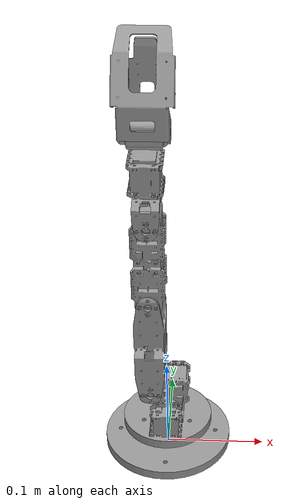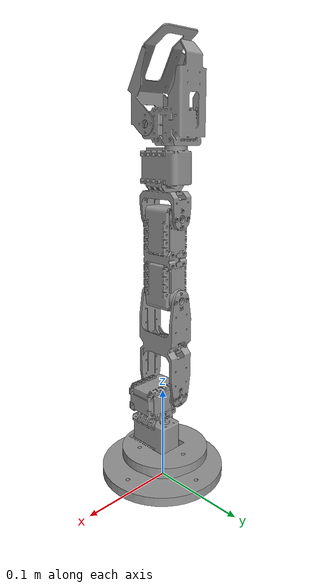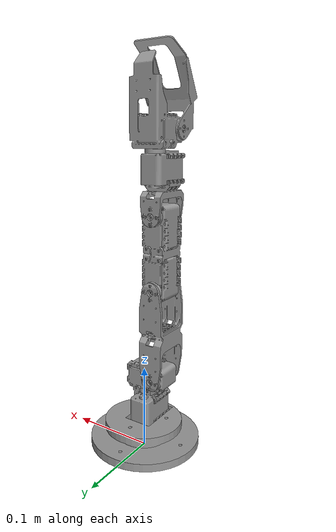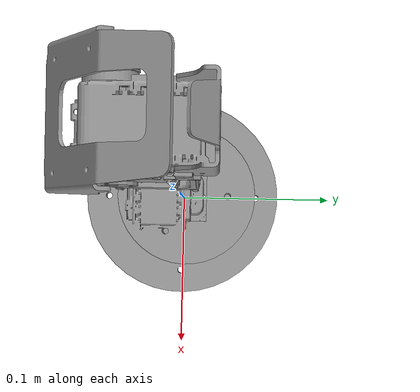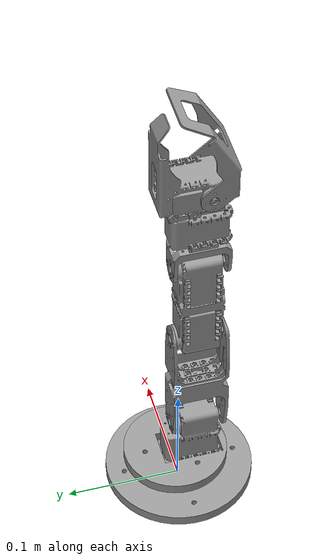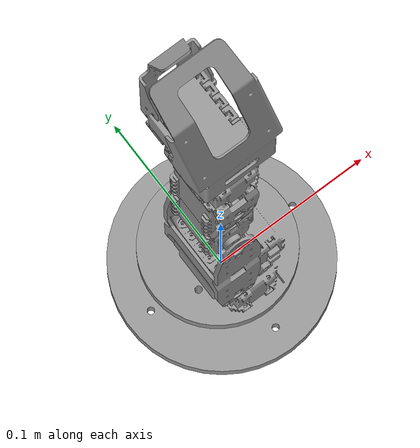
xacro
<?xml version="1.0"?>
<!-- Revolute-Revolute Manipulator -->
<robot name="robotis_manipulator" xmlns:xacro="http://www.ros.org/wiki/xacro">

  <!-- some parameters -->
  <xacro:property name="pi" value="3.141592654" />

  <!-- Import all Gazebo-customization elements, including Gazebo colors -->
  <xacro:include filename="$(find hcr_description)/urdf/yacra.gazebo" />
  <!-- Import Rviz colors -->
  <xacro:include filename="$(find hcr_description)/urdf/materials.xacro" />

  <link name="link_armBase"/>
  <joint name="joint_armBase" type="fixed">
    <parent link="link_armBase"/>
    <child link="link_arm1"/>
    <origin xyz="0 0 0" rpy="0 0 0"/>
  </joint>

  <!-- link 1 -->
  <link name="link_arm1">
    <collision>
      <origin xyz="-0.0 -0.0666 0" rpy="0 0 0"/>
      <geometry>
        <mesh filename="package://hcr_description/meshes/1.STL" scale="0.001 0.001 0.001"/>
      </geometry>
    </collision>

    <visual>
      <origin xyz="-0.0 -0.0666 0" rpy="0 0 0"/>
      <geometry>
        <mesh filename="package://hcr_description/meshes/1.STL" scale="0.001 0.001 0.001"/>
      </geometry>
      <material name="grey"/>
    </visual>

    <inertial>
      <origin xyz="-0.80 0.00000 -0.8223" rpy="0 0 0"/>
      <mass value="0.001"/>
      <inertia ixx="1.0" ixy="0.0" ixz="0.0" iyy="1.0" iyz="0.0" izz="1.0" />
    </inertial>
  </link>

  <!-- Joint 1 -->
  <joint name="joint_arm1" type="revolute">
    <parent link="link_arm1"/>
    <child link="link_arm2"/>
    <origin xyz="0.0 0.0 0.0" rpy="0 0 0"/>
    <axis xyz="0 0 1"/>
    <limit velocity="6.5" effort="1000" lower="${-pi}" upper="${pi}" />
    <dynamics damping="0.7"/>
  </joint>

  <transmission name="tranmission_arm1">
    <type>transmission_interface/SimpleTransmission</type>
    <joint name="joint_arm1">
      <hardwareInterface>hardware_interface/EffortJointInterface</hardwareInterface>
    </joint>
    <actuator name="actuartor_arm1">
      <hardwareInterface>hardware_interface/EffortJointInterface</hardwareInterface>
      <mechanicalReduction>1</mechanicalReduction>
    </actuator>
  </transmission>

  <!-- link 2 -->
  <link name="link_arm2">
    <collision>
      <origin xyz="-0.015 -0.063 -0.008" rpy="0 0 0"/>
      <geometry>
        <mesh filename="package://hcr_description/meshes/2.STL" scale="0.001 0.001 0.001"/>
      </geometry>
    </collision>

    <visual>
      <origin xyz="-0.015 -0.063 -0.008" rpy="0 0 0"/>
      <geometry>
        <mesh filename="package://hcr_description/meshes/2.STL" scale="0.001 0.001 0.001"/>
      </geometry>
      <material name="grey"/>
    </visual>

    <inertial>
      <origin xyz="0.00000 0.00000 0.00283" rpy="0 0 0"/>
      <mass value="0.94658"/>
      <inertia ixx="1.0" ixy="0.0" ixz="0.0" iyy="1.0" iyz="0.0" izz="1.0" />
    </inertial>
  </link>

  <!-- Joint 2 -->
  <joint name="joint_arm2" type="revolute">
    <parent link="link_arm2"/>
    <child link="link_arm3"/>
    <origin xyz="-0.01475 -0.01475 0.090" rpy="0 0 0"/>
    <axis xyz="0 1 0"/>
    <limit velocity="6.5" effort="1000" lower="-2.74276" upper="1.76715" />
    <dynamics damping="0.7"/>
  </joint>

  <transmission name="transmission_arm2">
    <type>transmission_interface/SimpleTransmission</type>
    <joint name="joint_arm2">
      <hardwareInterface>hardware_interface/EffortJointInterface</hardwareInterface>
    </joint>
    <actuator name="actuartor_arm2">
      <hardwareInterface>hardware_interface/EffortJointInterface</hardwareInterface>
      <mechanicalReduction>1</mechanicalReduction>
    </actuator>
  </transmission>

  <!-- link 3 -->
  <link name="link_arm3">
    <collision>
      <origin xyz="-0.00006 -0.048 -0.0980" rpy="0 0 0"/>
      <geometry>
        <mesh filename="package://hcr_description/meshes/3.STL" scale="0.001 0.001 0.001"/>
      </geometry>
    </collision>

    <visual>
      <origin xyz="-0.00006 -0.048 -0.0980" rpy="0 0 0"/>
      <geometry>
        <mesh filename="package://hcr_description/meshes/3.STL" scale="0.001 0.001 0.001"/>
      </geometry>
      <material name="grey"/>
    </visual>

    <inertial>
      <origin xyz="0.01768 -0.06881 0.00524" rpy="0 0 0"/>
      <mass value="1.30260"/>
      <inertia ixx="1.0" ixy="0.0" ixz="0.0" iyy="1.0" iyz="0.0" izz="1.0" />
    </inertial>
  </link>

  <!-- Joint 3 -->
  <joint name="joint_arm3" type="revolute">
    <parent link="link_arm3"/>
    <child link="link_arm4"/>
    <origin xyz="0.00000 0.00000 0.1074" rpy="0 0 0"/>
    <axis xyz="0 1 0"/>
    <limit velocity="6.5" effort="1000" lower="-2.83480" upper="2.99433" />
    <dynamics damping="0.7"/>
  </joint>

  <transmission name="transmission_arm3">
    <type>transmission_interface/SimpleTransmission</type>
    <joint name="joint_arm3">
      <hardwareInterface>hardware_interface/EffortJointInterface</hardwareInterface>
    </joint>
    <actuator name="actuartor_arm3">
      <hardwareInterface>hardware_interface/EffortJointInterface</hardwareInterface>
      <mechanicalReduction>1</mechanicalReduction>
    </actuator>
  </transmission>

  <!-- link 4 -->
  <link name="link_arm4">
    <collision>
      <origin xyz="0 -0.048 -0.20569" rpy="0 0 0"/>
      <geometry>
        <mesh filename="package://hcr_description/meshes/4-neu.STL" scale="0.001 0.001 0.001"/>
      </geometry>
    </collision>

    <visual>
      <origin xyz="0 -0.048 -0.20569" rpy="0 0 0"/>
      <geometry>
        <mesh filename="package://hcr_description/meshes/4-neu.STL" scale="0.001 0.001 0.001"/>
      </geometry>
      <material name="grey"/>
    </visual>

    <inertial>
      <origin xyz="0.12475 -0.05716 0.02979" rpy="0 0 0"/>
      <mass value="1.15977"/>
      <inertia ixx="1.0" ixy="0.0" ixz="0.0" iyy="1.0" iyz="0.0" izz="1.0" />
    </inertial>
  </link>

  <!-- Joint 4 -->
  <joint name="joint_arm4" type="revolute">
    <parent link="link_arm4"/>
    <child link="link_arm5"/>
   <origin xyz="0.00 0.00 0.08300" rpy="0 0 0"/>
    <axis xyz="0 1 0"/>
    <limit velocity="6.5" effort="1000" lower="-2.03713" upper="2.13530" />
    <dynamics damping="0.7"/>
  </joint>

  <transmission name="transmission_arm4">
    <type>transmission_interface/SimpleTransmission</type>
    <joint name="joint_arm4">
      <hardwareInterface>hardware_interface/EffortJointInterface</hardwareInterface>
    </joint>
    <actuator name="actuartor_arm4">
      <hardwareInterface>hardware_interface/EffortJointInterface</hardwareInterface>
      <mechanicalReduction>1</mechanicalReduction>
    </actuator>
  </transmission>

  <!-- link 5 -->
  <link name="link_arm5">
    <collision>
      <origin xyz="0 -0.048 -0.28890" rpy="0 0 0"/>
      <geometry>
        <mesh filename="package://hcr_description/meshes/5.STL" scale="0.001 0.001 0.001"/>
      </geometry>
    </collision>

    <visual>
      <origin xyz="0 -0.048 -0.28890" rpy="0 0 0"/>
      <geometry>
        <mesh filename="package://hcr_description/meshes/5.STL" scale="0.001 0.001 0.001"/>
      </geometry>
      <material name="grey"/>
    </visual>

    <inertial>
      <origin xyz="0.05642 -0.00217 0.00002" rpy="0 0 0"/>
      <mass value="0.44688"/>
      <inertia ixx="1.0" ixy="0.0" ixz="0.0" iyy="1.0" iyz="0.0" izz="1.0" />
    </inertial>
  </link>

  <!-- Joint 5 -->
  <joint name="joint_arm5" type="revolute">
    <parent link="link_arm5"/>
    <child link="link_arm6"/>
    <origin xyz="0.000 0.01785 0.06775" rpy="0 0 0"/>
    <axis xyz="0 0 1"/>
    <limit velocity="6.5" effort="1000" lower="${-pi}" upper="${pi}" />
    <dynamics damping="0.7"/>
  </joint>

  <transmission name="transmission_arm5">
    <type>transmission_interface/SimpleTransmission</type>
    <joint name="joint_arm5">
      <hardwareInterface>hardware_interface/EffortJointInterface</hardwareInterface>
    </joint>
    <actuator name="actuartor_arm5">
      <hardwareInterface>hardware_interface/EffortJointInterface</hardwareInterface>
      <mechanicalReduction>1</mechanicalReduction>
    </actuator>
  </transmission>

  <!-- link 6 -->
  <link name="link_arm6">
    <collision>
      <origin xyz="0 -0.063006 -0.35695008" rpy="0 0 0"/>
      <geometry>
        <mesh filename="package://hcr_description/meshes/6.STL" scale="0.001 0.001 0.001"/>
      </geometry>
    </collision>

    <visual>
      <origin xyz="0 -0.063006 -0.35695008" rpy="0 0 0"/>
      <geometry>
        <mesh filename="package://hcr_description/meshes/6.STL" scale="0.001 0.001 0.001"/>
      </geometry>
      <material name="grey"/>
    </visual>

    <inertial>
      <origin xyz="0.06831 -0.04457 0.00000" rpy="0 0 0"/>
      <mass value="0.43273"/>
      <inertia ixx="1.0" ixy="0.0" ixz="0.0" iyy="1.0" iyz="0.0" izz="1.0" />
    </inertial>
  </link>

  <!-- Joint 6 -->
  <joint name="joint_arm6" type="revolute">
    <parent link="link_arm6"/>
    <child link="link_armEndEff"/>
    <origin xyz="0.00 -0.0207 0.02400" rpy="0 0 0"/>
    <axis xyz="1 0 0"/>
    <limit velocity="6.5" effort="1000" lower="${-pi*0.15}" upper="${pi*0.4}" />
    <dynamics damping="0.7"/>
  </joint>

  <transmission name="transmission_arm6">
    <type>transmission_interface/SimpleTransmission</type>
    <joint name="joint_arm6">
      <hardwareInterface>hardware_interface/EffortJointInterface</hardwareInterface>
    </joint>
    <actuator name="actuartor_arm6">
      <hardwareInterface>hardware_interface/EffortJointInterface</hardwareInterface>
      <mechanicalReduction>1</mechanicalReduction>
    </actuator>
  </transmission>

  <!-- end link -->
  <link name="link_armEndEff">
    <collision>
      <origin xyz="0 -0.0418 -0.380" rpy="0 0 0"/>
      <geometry>
        <mesh filename="package://hcr_description/meshes/7.STL" scale="0.001 0.001 0.001"/>
      </geometry>
    </collision>

    <visual>
      <origin xyz="0 -0.0418 -0.380" rpy="0 0 0"/>
      <geometry>
        <mesh filename="package://hcr_description/meshes/7.STL" scale="0.001 0.001 0.001"/>
      </geometry>
      <material name="grey"/>
    </visual>

    <inertial>
      <origin xyz="0.00337 0.00000 0.00000" rpy="0 0 0"/>
      <mass value="0.01919"/>
      <inertia ixx="1.0" ixy="0.0" ixz="0.0" iyy="1.0" iyz="0.0" izz="1.0" />
    </inertial>
  </link>

</robot>
